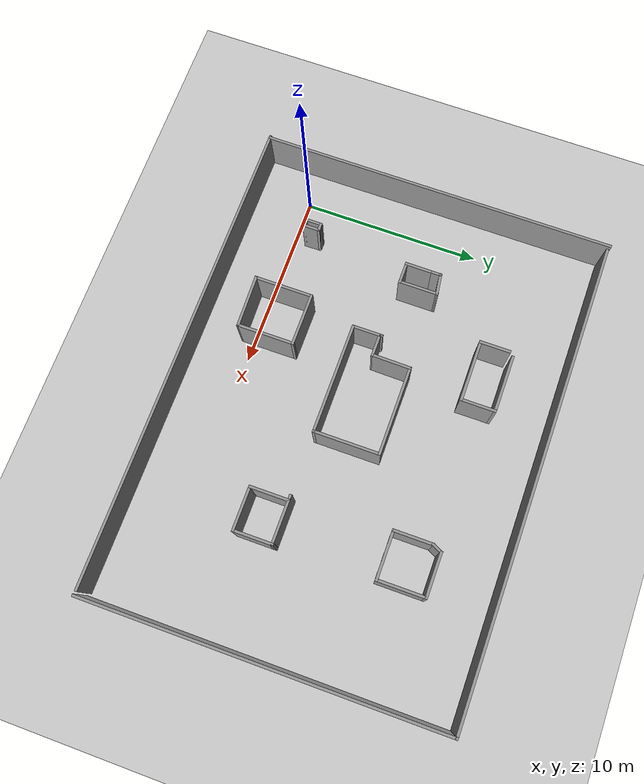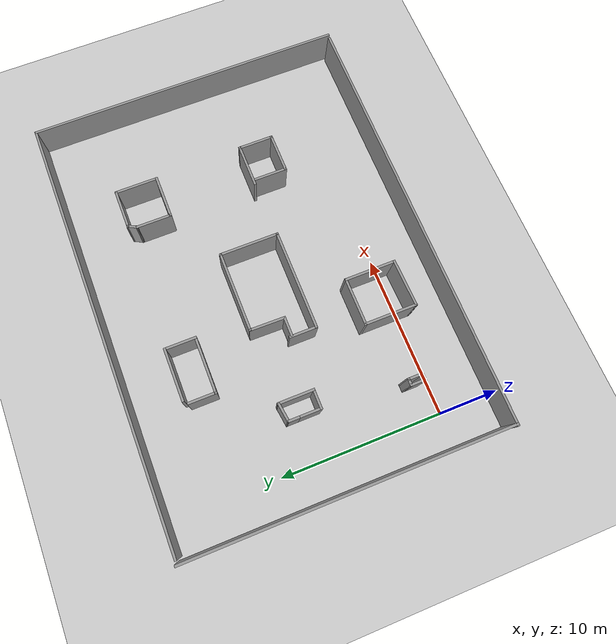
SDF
<sdf version="1.7">
 <world name="default">
  <light name="sun" type="directional">
   <pose>0 0 10 0 -0 0</pose>
   <diffuse>0.8 0.8 0.8 1</diffuse>
   <specular>0.2 0.2 0.2 1</specular>
   <attenuation>
    <range>1000</range>
    <constant>0.9</constant>
    <linear>0.01</linear>
    <quadratic>0.001</quadratic>
   </attenuation>
   <direction>-0.5 0.1 -0.9</direction>
   <spot><inner_angle>0</inner_angle><outer_angle>0</outer_angle><falloff>0</falloff></spot>
  </light>
  <model name="ground_plane">
   <static>1</static>
   <link name="link">
    <collision name="collision">
     <geometry><plane><normal>0 0 1</normal><size>100 100</size></plane></geometry>
     <surface>
      <contact><collide_bitmask>65535</collide_bitmask></contact>
      <friction><ode><mu>100</mu><mu2>50</mu2></ode></friction>
     </surface>
    </collision>
    <visual name="visual">
     <cast_shadows>0</cast_shadows>
     <geometry><plane><normal>0 0 1</normal><size>100 100</size></plane></geometry>
     <material>
      <script><uri>file://media/materials/scripts/gazebo.material</uri><name>Gazebo/Grey</name></script>
     </material>
    </visual>
   </link>
  </model>
  <gravity>0 0 -9.8</gravity>
  <magnetic_field>6e-06 2.3e-05 -4.2e-05</magnetic_field>
  <atmosphere type="adiabatic"/>
  <physics type="ode">
   <max_step_size>0.001</max_step_size>
   <real_time_factor>1</real_time_factor>
   <real_time_update_rate>1000</real_time_update_rate>
  </physics>
  <scene><ambient>0.4 0.4 0.4 1</ambient><background>0.7 0.7 0.7 1</background><shadows>1</shadows></scene>
  <spherical_coordinates>
   <surface_model>EARTH_WGS84</surface_model>
   <latitude_deg>0</latitude_deg>
   <longitude_deg>0</longitude_deg>
   <elevation>0</elevation>
   <heading_deg>0</heading_deg>
  </spherical_coordinates>
  <model name="58_worlds">
   <pose>11.3717 6.82731 0 0 -0 0</pose>
   <link name="Wall_11">
    <collision name="Wall_11_Collision">
     <geometry><box><size>26.8001 0.15 2.5</size></box></geometry>
     <pose>0 0 1.25 0 -0 0</pose>
    </collision>
    <visual name="Wall_11_Visual">
     <pose>0 0 1.25 0 -0 0</pose>
     <geometry><box><size>26.8001 0.15 2.5</size></box></geometry>
     <material>
      <script><uri>file://media/materials/scripts/gazebo.material</uri><name>Gazebo/Grey</name></script>
      <ambient>1 1 1 1</ambient>
     </material>
     <meta><layer>0</layer></meta>
    </visual>
    <pose>-0.148743 -9.91451 0 0 -0 -0.002251</pose>
   </link>
   <link name="Wall_13">
    <collision name="Wall_13_Collision">
     <geometry><box><size>20 0.15 2.5</size></box></geometry>
     <pose>0 0 1.25 0 -0 0</pose>
    </collision>
    <visual name="Wall_13_Visual">
     <pose>0 0 1.25 0 -0 0</pose>
     <geometry><box><size>20 0.15 2.5</size></box></geometry>
     <material>
      <script><uri>file://media/materials/scripts/gazebo.material</uri><name>Gazebo/Grey</name></script>
      <ambient>1 1 1 1</ambient>
     </material>
     <meta><layer>0</layer></meta>
    </visual>
    <pose>-13.4137 0.040486 0 0 -0 1.5708</pose>
   </link>
   <link name="Wall_140">
    <collision name="Wall_140_Collision">
     <geometry><box><size>2.25 0.15 2.5</size></box></geometry>
     <pose>0 0 1.25 0 -0 0</pose>
    </collision>
    <visual name="Wall_140_Visual">
     <pose>0 0 1.25 0 -0 0</pose>
     <geometry><box><size>2.25 0.15 2.5</size></box></geometry>
     <material>
      <script><uri>file://media/materials/scripts/gazebo.material</uri><name>Gazebo/Grey</name></script>
      <ambient>1 1 1 1</ambient>
     </material>
     <meta><layer>0</layer></meta>
    </visual>
    <pose>5.15891 4.90151 0 0 -0 -1.5708</pose>
   </link>
   <link name="Wall_141">
    <collision name="Wall_141_Collision">
     <geometry><box><size>2.75 0.15 2.5</size></box></geometry>
     <pose>0 0 1.25 0 -0 0</pose>
    </collision>
    <visual name="Wall_141_Visual">
     <pose>0 0 1.25 0 -0 0</pose>
     <geometry><box><size>2.75 0.15 2.5</size></box></geometry>
     <material>
      <script><uri>file://media/materials/scripts/gazebo.material</uri><name>Gazebo/Grey</name></script>
      <ambient>1 1 1 1</ambient>
     </material>
     <meta><layer>0</layer></meta>
    </visual>
    <pose>6.45891 3.85152 0 0 -0 0</pose>
   </link>
   <link name="Wall_142">
    <collision name="Wall_142_Collision">
     <geometry><box><size>2.75 0.15 2.5</size></box></geometry>
     <pose>0 0 1.25 0 -0 0</pose>
    </collision>
    <visual name="Wall_142_Visual">
     <pose>0 0 1.25 0 -0 0</pose>
     <geometry><box><size>2.75 0.15 2.5</size></box></geometry>
     <material>
      <script><uri>file://media/materials/scripts/gazebo.material</uri><name>Gazebo/Grey</name></script>
      <ambient>1 1 1 1</ambient>
     </material>
     <meta><layer>0</layer></meta>
    </visual>
    <pose>7.75891 5.15151 0 0 -0 1.5708</pose>
   </link>
   <link name="Wall_143">
    <collision name="Wall_143_Collision">
     <geometry><box><size>2.5 0.15 2.5</size></box></geometry>
     <pose>0 0 1.25 0 -0 0</pose>
    </collision>
    <visual name="Wall_143_Visual">
     <pose>0 0 1.25 0 -0 0</pose>
     <geometry><box><size>2.5 0.15 2.5</size></box></geometry>
     <material>
      <script><uri>file://media/materials/scripts/gazebo.material</uri><name>Gazebo/Grey</name></script>
      <ambient>1 1 1 1</ambient>
     </material>
     <meta><layer>0</layer></meta>
    </visual>
    <pose>6.58391 6.45151 0 0 -0 3.14159</pose>
   </link>
   <link name="Wall_144">
    <collision name="Wall_144_Collision">
     <geometry><box><size>0.709017 0.15 2.5</size></box></geometry>
     <pose>0 0 1.25 0 -0 0</pose>
    </collision>
    <visual name="Wall_144_Visual">
     <pose>0 0 1.25 0 -0 0</pose>
     <geometry><box><size>0.709017 0.15 2.5</size></box></geometry>
     <material>
      <script><uri>file://media/materials/scripts/gazebo.material</uri><name>Gazebo/Grey</name></script>
      <ambient>1 1 1 1</ambient>
     </material>
     <meta><layer>0</layer></meta>
    </visual>
    <pose>5.28391 6.20151 0 0 -0 -2.03444</pose>
   </link>
   <link name="Wall_146">
    <collision name="Wall_146_Collision">
     <geometry><box><size>2.25 0.15 2.5</size></box></geometry>
     <pose>0 0 1.25 0 -0 0</pose>
    </collision>
    <visual name="Wall_146_Visual">
     <pose>0 0 1.25 0 -0 0</pose>
     <geometry><box><size>2.25 0.15 2.5</size></box></geometry>
     <material>
      <script><uri>file://media/materials/scripts/gazebo.material</uri><name>Gazebo/Grey</name></script>
      <ambient>1 1 1 1</ambient>
     </material>
     <meta><layer>0</layer></meta>
    </visual>
    <pose>5.50391 -2.68848 0 0 -0 -1.5708</pose>
   </link>
   <link name="Wall_147">
    <collision name="Wall_147_Collision">
     <geometry><box><size>2.5 0.15 2.5</size></box></geometry>
     <pose>0 0 1.25 0 -0 0</pose>
    </collision>
    <visual name="Wall_147_Visual">
     <pose>0 0 1.25 0 -0 0</pose>
     <geometry><box><size>2.5 0.15 2.5</size></box></geometry>
     <material>
      <script><uri>file://media/materials/scripts/gazebo.material</uri><name>Gazebo/Grey</name></script>
      <ambient>1 1 1 1</ambient>
     </material>
     <meta><layer>0</layer></meta>
    </visual>
    <pose>6.67891 -3.73848 0 0 -0 0</pose>
   </link>
   <link name="Wall_148">
    <collision name="Wall_148_Collision">
     <geometry><box><size>2.25 0.15 2.5</size></box></geometry>
     <pose>0 0 1.25 0 -0 0</pose>
    </collision>
    <visual name="Wall_148_Visual">
     <pose>0 0 1.25 0 -0 0</pose>
     <geometry><box><size>2.25 0.15 2.5</size></box></geometry>
     <material>
      <script><uri>file://media/materials/scripts/gazebo.material</uri><name>Gazebo/Grey</name></script>
      <ambient>1 1 1 1</ambient>
     </material>
     <meta><layer>0</layer></meta>
    </visual>
    <pose>7.85391 -2.68848 0 0 -0 1.5708</pose>
   </link>
   <link name="Wall_149">
    <collision name="Wall_149_Collision">
     <geometry><box><size>2.75 0.15 2.5</size></box></geometry>
     <pose>0 0 1.25 0 -0 0</pose>
    </collision>
    <visual name="Wall_149_Visual">
     <pose>0 0 1.25 0 -0 0</pose>
     <geometry><box><size>2.75 0.15 2.5</size></box></geometry>
     <material>
      <script><uri>file://media/materials/scripts/gazebo.material</uri><name>Gazebo/Grey</name></script>
      <ambient>1 1 1 1</ambient>
     </material>
     <meta><layer>0</layer></meta>
    </visual>
    <pose>6.55391 -1.63848 0 0 -0 3.14159</pose>
   </link>
   <link name="Wall_152">
    <collision name="Wall_152_Collision">
     <geometry><box><size>26.75 0.15 2.5</size></box></geometry>
     <pose>0 0 1.25 0 -0 0</pose>
    </collision>
    <visual name="Wall_152_Visual">
     <pose>0 0 1.25 0 -0 0</pose>
     <geometry><box><size>26.75 0.15 2.5</size></box></geometry>
     <material>
      <script><uri>file://media/materials/scripts/gazebo.material</uri><name>Gazebo/Grey</name></script>
      <ambient>1 1 1 1</ambient>
     </material>
     <meta><layer>0</layer></meta>
    </visual>
    <pose>0.17391 9.88452 0 0 -0 0</pose>
   </link>
   <link name="Wall_153">
    <collision name="Wall_153_Collision">
     <geometry><box><size>20 0.15 2.5</size></box></geometry>
     <pose>0 0 1.25 0 -0 0</pose>
    </collision>
    <visual name="Wall_153_Visual">
     <pose>0 0 1.25 0 -0 0</pose>
     <geometry><box><size>20 0.15 2.5</size></box></geometry>
     <material>
      <script><uri>file://media/materials/scripts/gazebo.material</uri><name>Gazebo/Grey</name></script>
      <ambient>1 1 1 1</ambient>
     </material>
     <meta><layer>0</layer></meta>
    </visual>
    <pose>13.4739 -0.040485 0 0 -0 -1.5708</pose>
   </link>
   <link name="Wall_29">
    <collision name="Wall_29_Collision">
     <geometry><box><size>1 0.15 2.5</size></box></geometry>
     <pose>0 0 1.25 0 -0 0</pose>
    </collision>
    <visual name="Wall_29_Visual">
     <pose>0 0 1.25 0 -0 0</pose>
     <geometry><box><size>1 0.15 2.5</size></box></geometry>
     <material>
      <script><uri>file://media/materials/scripts/gazebo.material</uri><name>Gazebo/Grey</name></script>
      <ambient>1 1 1 1</ambient>
     </material>
     <meta><layer>0</layer></meta>
    </visual>
    <pose>-9.35873 -5.77014 0 0 -0 -1.5708</pose>
   </link>
   <link name="Wall_30">
    <collision name="Wall_30_Collision">
     <geometry><box><size>0.5 0.15 2.5</size></box></geometry>
     <pose>0 0 1.25 0 -0 0</pose>
    </collision>
    <visual name="Wall_30_Visual">
     <pose>0 0 1.25 0 -0 0</pose>
     <geometry><box><size>0.5 0.15 2.5</size></box></geometry>
     <material>
      <script><uri>file://media/materials/scripts/gazebo.material</uri><name>Gazebo/Grey</name></script>
      <ambient>1 1 1 1</ambient>
     </material>
     <meta><layer>0</layer></meta>
    </visual>
    <pose>-9.18373 -6.19514 0 0 -0 0</pose>
   </link>
   <link name="Wall_31">
    <collision name="Wall_31_Collision">
     <geometry><box><size>1 0.15 2.5</size></box></geometry>
     <pose>0 0 1.25 0 -0 0</pose>
    </collision>
    <visual name="Wall_31_Visual">
     <pose>0 0 1.25 0 -0 0</pose>
     <geometry><box><size>1 0.15 2.5</size></box></geometry>
     <material>
      <script><uri>file://media/materials/scripts/gazebo.material</uri><name>Gazebo/Grey</name></script>
      <ambient>1 1 1 1</ambient>
     </material>
     <meta><layer>0</layer></meta>
    </visual>
    <pose>-9.00873 -5.77014 0 0 -0 1.5708</pose>
   </link>
   <link name="Wall_32">
    <collision name="Wall_32_Collision">
     <geometry><box><size>0.5 0.15 2.5</size></box></geometry>
     <pose>0 0 1.25 0 -0 0</pose>
    </collision>
    <visual name="Wall_32_Visual">
     <pose>0 0 1.25 0 -0 0</pose>
     <geometry><box><size>0.5 0.15 2.5</size></box></geometry>
     <material>
      <script><uri>file://media/materials/scripts/gazebo.material</uri><name>Gazebo/Grey</name></script>
      <ambient>1 1 1 1</ambient>
     </material>
     <meta><layer>0</layer></meta>
    </visual>
    <pose>-9.18373 -5.34514 0 0 -0 3.14159</pose>
   </link>
   <link name="Wall_34">
    <collision name="Wall_34_Collision">
     <geometry><box><size>3.25 0.15 2.5</size></box></geometry>
     <pose>0 0 1.25 0 -0 0</pose>
    </collision>
    <visual name="Wall_34_Visual">
     <pose>0 0 1.25 0 -0 0</pose>
     <geometry><box><size>3.25 0.15 2.5</size></box></geometry>
     <material>
      <script><uri>file://media/materials/scripts/gazebo.material</uri><name>Gazebo/Grey</name></script>
      <ambient>1 1 1 1</ambient>
     </material>
     <meta><layer>0</layer></meta>
    </visual>
    <pose>-5.24618 -5.97774 0 0 -0 -1.5708</pose>
   </link>
   <link name="Wall_35">
    <collision name="Wall_35_Collision">
     <geometry><box><size>3.00114 0.15 2.5</size></box></geometry>
     <pose>0 0 1.25 0 -0 0</pose>
    </collision>
    <visual name="Wall_35_Visual">
     <pose>0 0 1.25 0 -0 0</pose>
     <geometry><box><size>3.00114 0.15 2.5</size></box></geometry>
     <material>
      <script><uri>file://media/materials/scripts/gazebo.material</uri><name>Gazebo/Grey</name></script>
      <ambient>1 1 1 1</ambient>
     </material>
     <meta><layer>0</layer></meta>
    </visual>
    <pose>-3.82119 -7.52774 0 0 -0 0.028222</pose>
   </link>
   <link name="Wall_36">
    <collision name="Wall_36_Collision">
     <geometry><box><size>3.25 0.15 2.5</size></box></geometry>
     <pose>0 0 1.25 0 -0 0</pose>
    </collision>
    <visual name="Wall_36_Visual">
     <pose>0 0 1.25 0 -0 0</pose>
     <geometry><box><size>3.25 0.15 2.5</size></box></geometry>
     <material>
      <script><uri>file://media/materials/scripts/gazebo.material</uri><name>Gazebo/Grey</name></script>
      <ambient>1 1 1 1</ambient>
     </material>
     <meta><layer>0</layer></meta>
    </visual>
    <pose>-2.39619 -5.93751 0 0 -0 1.5708</pose>
   </link>
   <link name="Wall_37">
    <collision name="Wall_37_Collision">
     <geometry><box><size>3 0.15 2.5</size></box></geometry>
     <pose>0 0 1.25 0 -0 0</pose>
    </collision>
    <visual name="Wall_37_Visual">
     <pose>0 0 1.25 0 -0 0</pose>
     <geometry><box><size>3 0.15 2.5</size></box></geometry>
     <material>
      <script><uri>file://media/materials/scripts/gazebo.material</uri><name>Gazebo/Grey</name></script>
      <ambient>1 1 1 1</ambient>
     </material>
     <meta><layer>0</layer></meta>
    </visual>
    <pose>-3.82119 -4.38751 0 0 -0 3.14159</pose>
   </link>
   <link name="Wall_40">
    <collision name="Wall_40_Collision">
     <geometry><box><size>2.25 0.15 2.5</size></box></geometry>
     <pose>0 0 1.25 0 -0 0</pose>
    </collision>
    <visual name="Wall_40_Visual">
     <pose>0 0 1.25 0 -0 0</pose>
     <geometry><box><size>2.25 0.15 2.5</size></box></geometry>
     <material>
      <script><uri>file://media/materials/scripts/gazebo.material</uri><name>Gazebo/Grey</name></script>
      <ambient>1 1 1 1</ambient>
     </material>
     <meta><layer>0</layer></meta>
    </visual>
    <pose>-3.19279 0.860426 0 0 -0 1.55631</pose>
   </link>
   <link name="Wall_41">
    <collision name="Wall_41_Collision">
     <geometry><box><size>5.00666 0.15 2.5</size></box></geometry>
     <pose>0 0 1.25 0 -0 0</pose>
    </collision>
    <visual name="Wall_41_Visual">
     <pose>0 0 1.25 0 -0 0</pose>
     <geometry><box><size>5.00666 0.15 2.5</size></box></geometry>
     <material>
      <script><uri>file://media/materials/scripts/gazebo.material</uri><name>Gazebo/Grey</name></script>
      <ambient>1 1 1 1</ambient>
     </material>
     <meta><layer>0</layer></meta>
    </visual>
    <pose>-0.718837 1.91043 0 0 -0 0</pose>
   </link>
   <link name="Wall_42">
    <collision name="Wall_42_Collision">
     <geometry><box><size>3.75 0.15 2.5</size></box></geometry>
     <pose>0 0 1.25 0 -0 0</pose>
    </collision>
    <visual name="Wall_42_Visual">
     <pose>0 0 1.25 0 -0 0</pose>
     <geometry><box><size>3.75 0.15 2.5</size></box></geometry>
     <material>
      <script><uri>file://media/materials/scripts/gazebo.material</uri><name>Gazebo/Grey</name></script>
      <ambient>1 1 1 1</ambient>
     </material>
     <meta><layer>0</layer></meta>
    </visual>
    <pose>1.70949 0.110426 0 0 -0 -1.5708</pose>
   </link>
   <link name="Wall_43">
    <collision name="Wall_43_Collision">
     <geometry><box><size>6.21958 0.15 2.5</size></box></geometry>
     <pose>0 0 1.25 0 -0 0</pose>
    </collision>
    <visual name="Wall_43_Visual">
     <pose>0 0 1.25 0 -0 0</pose>
     <geometry><box><size>6.21958 0.15 2.5</size></box></geometry>
     <material>
      <script><uri>file://media/materials/scripts/gazebo.material</uri><name>Gazebo/Grey</name></script>
      <ambient>1 1 1 1</ambient>
     </material>
     <meta><layer>0</layer></meta>
    </visual>
    <pose>-1.3253 -1.68957 0 0 -0 3.14159</pose>
   </link>
   <link name="Wall_44">
    <collision name="Wall_44_Collision">
     <geometry><box><size>1.75 0.15 2.5</size></box></geometry>
     <pose>0 0 1.25 0 -0 0</pose>
    </collision>
    <visual name="Wall_44_Visual">
     <pose>0 0 1.25 0 -0 0</pose>
     <geometry><box><size>1.75 0.15 2.5</size></box></geometry>
     <material>
      <script><uri>file://media/materials/scripts/gazebo.material</uri><name>Gazebo/Grey</name></script>
      <ambient>1 1 1 1</ambient>
     </material>
     <meta><layer>0</layer></meta>
    </visual>
    <pose>-4.3753 -0.889574 0 0 -0 1.5708</pose>
   </link>
   <link name="Wall_46">
    <collision name="Wall_46_Collision">
     <geometry><box><size>1.25 0.15 2.5</size></box></geometry>
     <pose>0 0 1.25 0 -0 0</pose>
    </collision>
    <visual name="Wall_46_Visual">
     <pose>0 0 1.25 0 -0 0</pose>
     <geometry><box><size>1.25 0.15 2.5</size></box></geometry>
     <material>
      <script><uri>file://media/materials/scripts/gazebo.material</uri><name>Gazebo/Grey</name></script>
      <ambient>1 1 1 1</ambient>
     </material>
     <meta><layer>0</layer></meta>
    </visual>
    <pose>-3.758 -0.189574 0 0 -0 3.14159</pose>
   </link>
   <link name="Wall_52">
    <collision name="Wall_52_Collision">
     <geometry><box><size>0.75 0.15 2.5</size></box></geometry>
     <pose>0 0 1.25 0 -0 0</pose>
    </collision>
    <visual name="Wall_52_Visual">
     <pose>0 0 1.25 0 -0 0</pose>
     <geometry><box><size>0.75 0.15 2.5</size></box></geometry>
     <material>
      <script><uri>file://media/materials/scripts/gazebo.material</uri><name>Gazebo/Grey</name></script>
      <ambient>1 1 1 1</ambient>
     </material>
     <meta><layer>0</layer></meta>
    </visual>
    <pose>-8.72194 1.47984 0 0 -0 -1.5708</pose>
   </link>
   <link name="Wall_53">
    <collision name="Wall_53_Collision">
     <geometry><box><size>1.5 0.15 2.5</size></box></geometry>
     <pose>0 0 1.25 0 -0 0</pose>
    </collision>
    <visual name="Wall_53_Visual">
     <pose>0 0 1.25 0 -0 0</pose>
     <geometry><box><size>1.5 0.15 2.5</size></box></geometry>
     <material>
      <script><uri>file://media/materials/scripts/gazebo.material</uri><name>Gazebo/Grey</name></script>
      <ambient>1 1 1 1</ambient>
     </material>
     <meta><layer>0</layer></meta>
    </visual>
    <pose>-8.72194 0.504836 0 0 -0 -1.5708</pose>
   </link>
   <link name="Wall_54">
    <collision name="Wall_54_Collision">
     <geometry><box><size>1.25 0.15 2.5</size></box></geometry>
     <pose>0 0 1.25 0 -0 0</pose>
    </collision>
    <visual name="Wall_54_Visual">
     <pose>0 0 1.25 0 -0 0</pose>
     <geometry><box><size>1.25 0.15 2.5</size></box></geometry>
     <material>
      <script><uri>file://media/materials/scripts/gazebo.material</uri><name>Gazebo/Grey</name></script>
      <ambient>1 1 1 1</ambient>
     </material>
     <meta><layer>0</layer></meta>
    </visual>
    <pose>-8.17194 -0.170163 0 0 -0 0</pose>
   </link>
   <link name="Wall_55">
    <collision name="Wall_55_Collision">
     <geometry><box><size>2.25 0.15 2.5</size></box></geometry>
     <pose>0 0 1.25 0 -0 0</pose>
    </collision>
    <visual name="Wall_55_Visual">
     <pose>0 0 1.25 0 -0 0</pose>
     <geometry><box><size>2.25 0.15 2.5</size></box></geometry>
     <material>
      <script><uri>file://media/materials/scripts/gazebo.material</uri><name>Gazebo/Grey</name></script>
      <ambient>1 1 1 1</ambient>
     </material>
     <meta><layer>0</layer></meta>
    </visual>
    <pose>-7.62194 0.879836 0 0 -0 1.5708</pose>
   </link>
   <link name="Wall_56">
    <collision name="Wall_56_Collision">
     <geometry><box><size>1.26018 0.15 2.5</size></box></geometry>
     <pose>0 0 1.25 0 -0 0</pose>
    </collision>
    <visual name="Wall_56_Visual">
     <pose>0 0 1.25 0 -0 0</pose>
     <geometry><box><size>1.26018 0.15 2.5</size></box></geometry>
     <material>
      <script><uri>file://media/materials/scripts/gazebo.material</uri><name>Gazebo/Grey</name></script>
      <ambient>1 1 1 1</ambient>
     </material>
     <meta><layer>0</layer></meta>
    </visual>
    <pose>-8.17194 1.85484 0 0 -0 -3.00606</pose>
   </link>
   <link name="Wall_58">
    <collision name="Wall_58_Collision">
     <geometry><box><size>1.75 0.15 2.5</size></box></geometry>
     <pose>0 0 1.25 0 -0 0</pose>
    </collision>
    <visual name="Wall_58_Visual">
     <pose>0 0 1.25 0 -0 0</pose>
     <geometry><box><size>1.75 0.15 2.5</size></box></geometry>
     <material>
      <script><uri>file://media/materials/scripts/gazebo.material</uri><name>Gazebo/Grey</name></script>
      <ambient>1 1 1 1</ambient>
     </material>
     <meta><layer>0</layer></meta>
    </visual>
    <pose>-5.80186 5.77059 0 0 -0 -1.5708</pose>
   </link>
   <link name="Wall_59">
    <collision name="Wall_59_Collision">
     <geometry><box><size>3.5 0.15 2.5</size></box></geometry>
     <pose>0 0 1.25 0 -0 0</pose>
    </collision>
    <visual name="Wall_59_Visual">
     <pose>0 0 1.25 0 -0 0</pose>
     <geometry><box><size>3.5 0.15 2.5</size></box></geometry>
     <material>
      <script><uri>file://media/materials/scripts/gazebo.material</uri><name>Gazebo/Grey</name></script>
      <ambient>1 1 1 1</ambient>
     </material>
     <meta><layer>0</layer></meta>
    </visual>
    <pose>-4.12686 4.97059 0 0 -0 0</pose>
   </link>
   <link name="Wall_60">
    <collision name="Wall_60_Collision">
     <geometry><box><size>2 0.15 2.5</size></box></geometry>
     <pose>0 0 1.25 0 -0 0</pose>
    </collision>
    <visual name="Wall_60_Visual">
     <pose>0 0 1.25 0 -0 0</pose>
     <geometry><box><size>2 0.15 2.5</size></box></geometry>
     <material>
      <script><uri>file://media/materials/scripts/gazebo.material</uri><name>Gazebo/Grey</name></script>
      <ambient>1 1 1 1</ambient>
     </material>
     <meta><layer>0</layer></meta>
    </visual>
    <pose>-2.45186 5.89559 0 0 -0 1.5708</pose>
   </link>
   <link name="Wall_61">
    <collision name="Wall_61_Collision">
     <geometry><box><size>3.25 0.15 2.5</size></box></geometry>
     <pose>0 0 1.25 0 -0 0</pose>
    </collision>
    <visual name="Wall_61_Visual">
     <pose>0 0 1.25 0 -0 0</pose>
     <geometry><box><size>3.25 0.15 2.5</size></box></geometry>
     <material>
      <script><uri>file://media/materials/scripts/gazebo.material</uri><name>Gazebo/Grey</name></script>
      <ambient>1 1 1 1</ambient>
     </material>
     <meta><layer>0</layer></meta>
    </visual>
    <pose>-4.00186 6.82059 0 0 -0 3.14159</pose>
   </link>
   <static>1</static>
  </model>
 </world>
</sdf>
